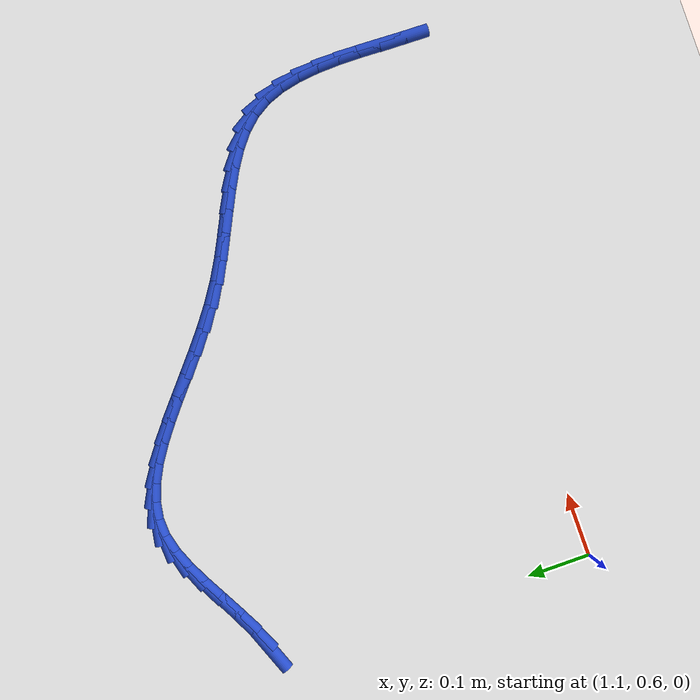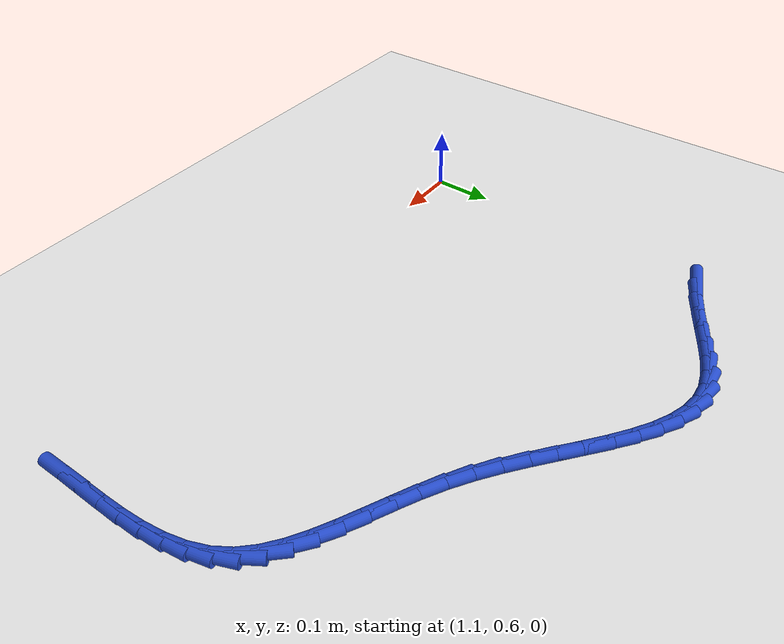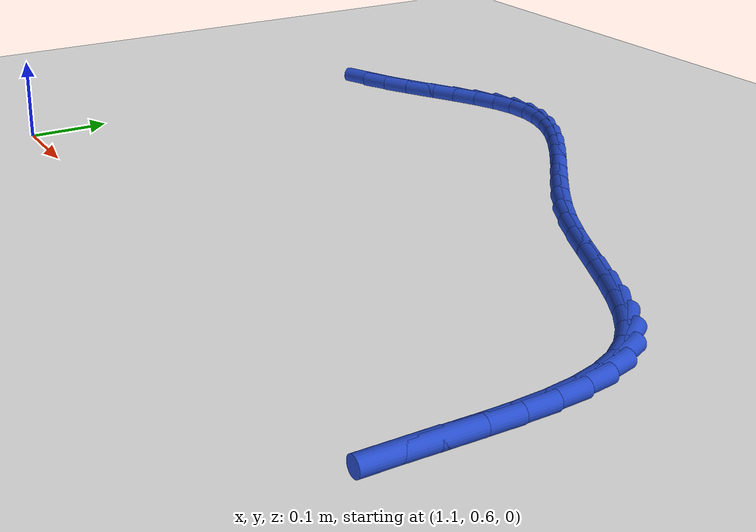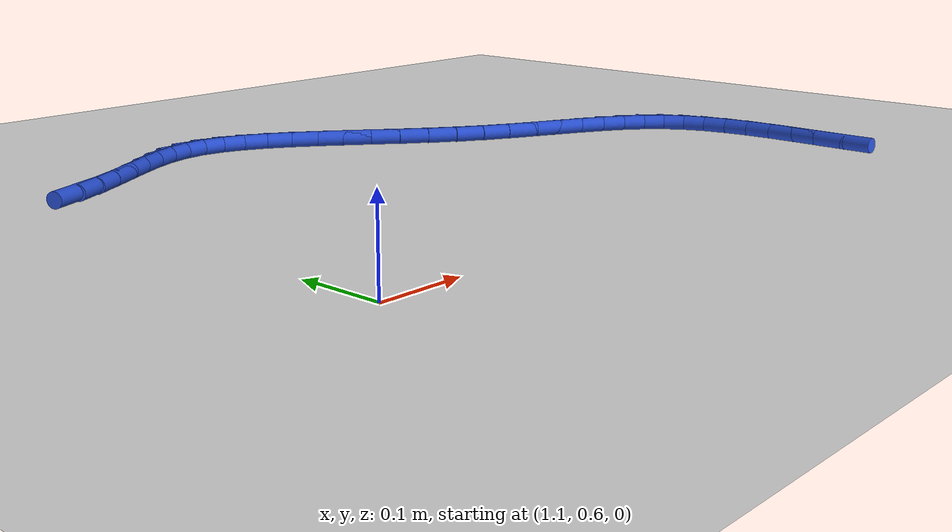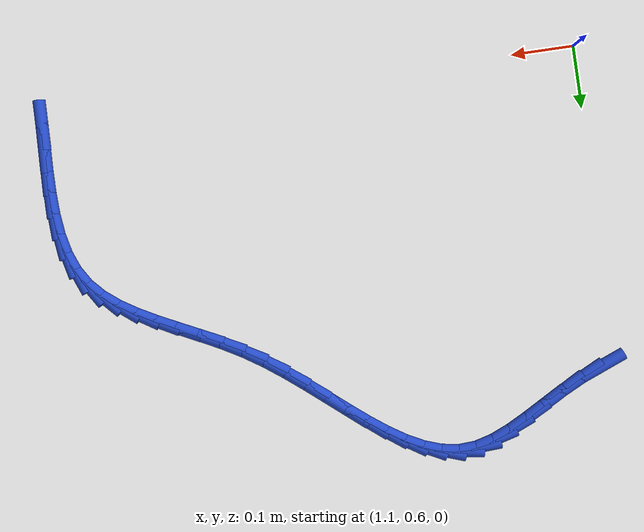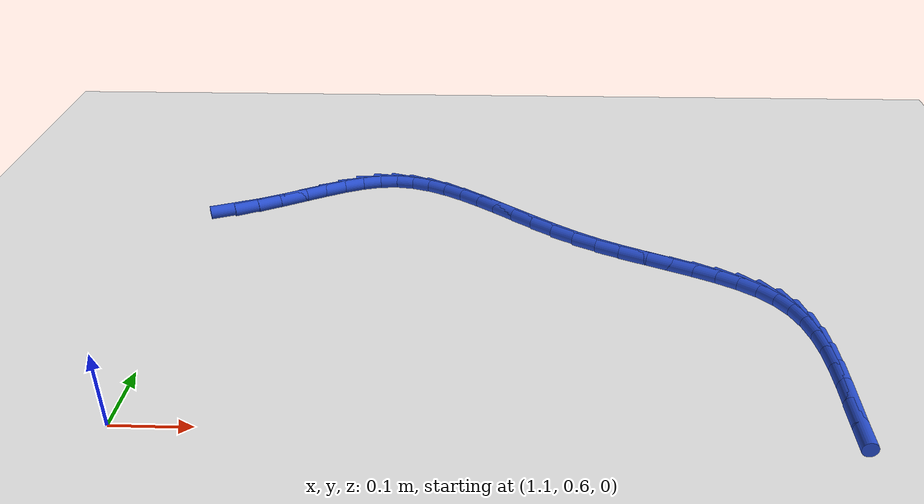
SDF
<sdf version="1.6">
 <world name="default">
  <model name="ground_plane">
   <static>1</static>
   <link name="link">
    <collision name="collision">
     <geometry><plane><normal>0 0 1</normal><size>100 100</size></plane></geometry>
     <surface><friction><ode><mu>100</mu><mu2>50</mu2></ode></friction></surface>
    </collision>
    <visual name="visual">
     <cast_shadows>0</cast_shadows>
     <geometry><plane><normal>0 0 1</normal><size>100 100</size></plane></geometry>
     <material>
      <script><uri>file://media/materials/scripts/gazebo.material</uri><name>Gazebo/WhiteGlow</name></script>
     </material>
    </visual>
   </link>
  </model>
  <model name="line">
   <link name="link_52">
    <pose>1.1265921747616061 1.1109407938012097 0.01 0 1.57 0.38331383297517735</pose>
    <collision name="collision">
     <geometry><cylinder><radius>0.01</radius><length>0.08</length></cylinder></geometry>
    </collision>
    <visual name="visual">
     <material>
      <script><name>Gazebo/Blue</name><uri>file://media/materials/scripts/gazebo.material</uri></script>
     </material>
     <geometry><cylinder><radius>0.01</radius><length>0.08</length></cylinder></geometry>
    </visual>
   </link>
   <link name="link_53">
    <pose>1.160146334136835 1.1244718548027928 0.01 0 1.57 0.46564897024068913</pose>
    <collision name="collision">
     <geometry><cylinder><radius>0.01</radius><length>0.08</length></cylinder></geometry>
    </collision>
    <visual name="visual">
     <material>
      <script><name>Gazebo/Blue</name><uri>file://media/materials/scripts/gazebo.material</uri></script>
     </material>
     <geometry><cylinder><radius>0.01</radius><length>0.08</length></cylinder></geometry>
    </visual>
   </link>
   <link name="link_54">
    <pose>1.1925611931820037 1.1407604579657564 0.01 0 1.57 0.5103595775224526</pose>
    <collision name="collision">
     <geometry><cylinder><radius>0.01</radius><length>0.08</length></cylinder></geometry>
    </collision>
    <visual name="visual">
     <material>
      <script><name>Gazebo/Blue</name><uri>file://media/materials/scripts/gazebo.material</uri></script>
     </material>
     <geometry><cylinder><radius>0.01</radius><length>0.08</length></cylinder></geometry>
    </visual>
   </link>
   <link name="link_55">
    <pose>1.2239514683503903 1.158333703762203 0.01 0 1.57 0.5176873888681286</pose>
    <collision name="collision">
     <geometry><cylinder><radius>0.01</radius><length>0.08</length></cylinder></geometry>
    </collision>
    <visual name="visual">
     <material>
      <script><name>Gazebo/Blue</name><uri>file://media/materials/scripts/gazebo.material</uri></script>
     </material>
     <geometry><cylinder><radius>0.01</radius><length>0.08</length></cylinder></geometry>
    </visual>
   </link>
   <link name="link_56">
    <pose>1.2544363690275746 1.1756947064746546 0.01 0 1.57 0.4850304421787086</pose>
    <collision name="collision">
     <geometry><cylinder><radius>0.01</radius><length>0.08</length></cylinder></geometry>
    </collision>
    <visual name="visual">
     <material>
      <script><name>Gazebo/Blue</name><uri>file://media/materials/scripts/gazebo.material</uri></script>
     </material>
     <geometry><cylinder><radius>0.01</radius><length>0.08</length></cylinder></geometry>
    </visual>
   </link>
   <link name="link_57">
    <pose>1.2841351045991336 1.1913465803856331 0.01 0 1.57 0.4049985213432395</pose>
    <collision name="collision">
     <geometry><cylinder><radius>0.01</radius><length>0.08</length></cylinder></geometry>
    </collision>
    <visual name="visual">
     <material>
      <script><name>Gazebo/Blue</name><uri>file://media/materials/scripts/gazebo.material</uri></script>
     </material>
     <geometry><cylinder><radius>0.01</radius><length>0.08</length></cylinder></geometry>
    </visual>
   </link>
   <link name="link_58">
    <pose>1.313166884450647 1.2037924397776605 0.01 0 1.57 0.26542142345214836</pose>
    <collision name="collision">
     <geometry><cylinder><radius>0.01</radius><length>0.08</length></cylinder></geometry>
    </collision>
    <visual name="visual">
     <material>
      <script><name>Gazebo/Blue</name><uri>file://media/materials/scripts/gazebo.material</uri></script>
     </material>
     <geometry><cylinder><radius>0.01</radius><length>0.08</length></cylinder></geometry>
    </visual>
   </link>
   <link name="link_59">
    <pose>1.3416509179676923 1.211535398933259 0.01 0 1.57 0.06031166822615153</pose>
    <collision name="collision">
     <geometry><cylinder><radius>0.01</radius><length>0.08</length></cylinder></geometry>
    </collision>
    <visual name="visual">
     <material>
      <script><name>Gazebo/Blue</name><uri>file://media/materials/scripts/gazebo.material</uri></script>
     </material>
     <geometry><cylinder><radius>0.01</radius><length>0.08</length></cylinder></geometry>
    </visual>
   </link>
   <link name="link_60">
    <pose>1.3697072584119905 1.2132295783190832 0.01 0 1.57 -0.15415004500149007</pose>
    <collision name="collision">
     <geometry><cylinder><radius>0.01</radius><length>0.08</length></cylinder></geometry>
    </collision>
    <visual name="visual">
     <material>
      <script><name>Gazebo/Blue</name><uri>file://media/materials/scripts/gazebo.material</uri></script>
     </material>
     <geometry><cylinder><radius>0.01</radius><length>0.08</length></cylinder></geometry>
    </visual>
   </link>
   <link name="link_61">
    <pose>1.3974637134783245 1.2089167041035107 0.01 0 1.57 -0.33264679324486424</pose>
    <collision name="collision">
     <geometry><cylinder><radius>0.01</radius><length>0.08</length></cylinder></geometry>
    </collision>
    <visual name="visual">
     <material>
      <script><name>Gazebo/Blue</name><uri>file://media/materials/scripts/gazebo.material</uri></script>
     </material>
     <geometry><cylinder><radius>0.01</radius><length>0.08</length></cylinder></geometry>
    </visual>
   </link>
   <link name="link_62">
    <pose>1.4250522641023826 1.1993852769551159 0.01 0 1.57 -0.46880084862231314</pose>
    <collision name="collision">
     <geometry><cylinder><radius>0.01</radius><length>0.08</length></cylinder></geometry>
    </collision>
    <visual name="visual">
     <material>
      <script><name>Gazebo/Blue</name><uri>file://media/materials/scripts/gazebo.material</uri></script>
     </material>
     <geometry><cylinder><radius>0.01</radius><length>0.08</length></cylinder></geometry>
    </visual>
   </link>
   <link name="link_63">
    <pose>1.4526049314771863 1.1854310013323681 0.01 0 1.57 -0.5663874130373415</pose>
    <collision name="collision">
     <geometry><cylinder><radius>0.01</radius><length>0.08</length></cylinder></geometry>
    </collision>
    <visual name="visual">
     <material>
      <script><name>Gazebo/Blue</name><uri>file://media/materials/scripts/gazebo.material</uri></script>
     </material>
     <geometry><cylinder><radius>0.01</radius><length>0.08</length></cylinder></geometry>
    </visual>
   </link>
   <link name="link_64">
    <pose>1.4802537367957573 1.1678495816937384 0.01 0 1.57 -0.6320428697388675</pose>
    <collision name="collision">
     <geometry><cylinder><radius>0.01</radius><length>0.08</length></cylinder></geometry>
    </collision>
    <visual name="visual">
     <material>
      <script><name>Gazebo/Blue</name><uri>file://media/materials/scripts/gazebo.material</uri></script>
     </material>
     <geometry><cylinder><radius>0.01</radius><length>0.08</length></cylinder></geometry>
    </visual>
   </link>
   <link name="link_65">
    <pose>1.5081307012511185 1.147436722497697 0.01 0 1.57 -0.6716861099350321</pose>
    <collision name="collision">
     <geometry><cylinder><radius>0.01</radius><length>0.08</length></cylinder></geometry>
    </collision>
    <visual name="visual">
     <material>
      <script><name>Gazebo/Blue</name><uri>file://media/materials/scripts/gazebo.material</uri></script>
     </material>
     <geometry><cylinder><radius>0.01</radius><length>0.08</length></cylinder></geometry>
    </visual>
   </link>
   <link name="link_66">
    <pose>1.536367846036292 1.1249881282027132 0.01 0 1.57 -0.6895289632966681</pose>
    <collision name="collision">
     <geometry><cylinder><radius>0.01</radius><length>0.08</length></cylinder></geometry>
    </collision>
    <visual name="visual">
     <material>
      <script><name>Gazebo/Blue</name><uri>file://media/materials/scripts/gazebo.material</uri></script>
     </material>
     <geometry><cylinder><radius>0.01</radius><length>0.08</length></cylinder></geometry>
    </visual>
   </link>
   <link name="link_67">
    <pose>1.565097192344299 1.101299503267259 0.01 0 1.57 -0.6881001317095136</pose>
    <collision name="collision">
     <geometry><cylinder><radius>0.01</radius><length>0.08</length></cylinder></geometry>
    </collision>
    <visual name="visual">
     <material>
      <script><name>Gazebo/Blue</name><uri>file://media/materials/scripts/gazebo.material</uri></script>
     </material>
     <geometry><cylinder><radius>0.01</radius><length>0.08</length></cylinder></geometry>
    </visual>
   </link>
   <link name="link_68">
    <pose>1.5944507613681616 1.0771665521498035 0.01 0 1.57 -0.6685076442760897</pose>
    <collision name="collision">
     <geometry><cylinder><radius>0.01</radius><length>0.08</length></cylinder></geometry>
    </collision>
    <visual name="visual">
     <material>
      <script><name>Gazebo/Blue</name><uri>file://media/materials/scripts/gazebo.material</uri></script>
     </material>
     <geometry><cylinder><radius>0.01</radius><length>0.08</length></cylinder></geometry>
    </visual>
   </link>
   <link name="link_69">
    <pose>1.6245605743009028 1.053384979308817 0.01 0 1.57 -0.6307017678419294</pose>
    <collision name="collision">
     <geometry><cylinder><radius>0.01</radius><length>0.08</length></cylinder></geometry>
    </collision>
    <visual name="visual">
     <material>
      <script><name>Gazebo/Blue</name><uri>file://media/materials/scripts/gazebo.material</uri></script>
     </material>
     <geometry><cylinder><radius>0.01</radius><length>0.08</length></cylinder></geometry>
    </visual>
   </link>
   <link name="link_70">
    <pose>1.6555586523355434 1.0307504892027703 0.01 0 1.57 -0.5738004789861915</pose>
    <collision name="collision">
     <geometry><cylinder><radius>0.01</radius><length>0.08</length></cylinder></geometry>
    </collision>
    <visual name="visual">
     <material>
      <script><name>Gazebo/Blue</name><uri>file://media/materials/scripts/gazebo.material</uri></script>
     </material>
     <geometry><cylinder><radius>0.01</radius><length>0.08</length></cylinder></geometry>
    </visual>
   </link>
   <link name="link_71">
    <pose>1.6875757306218397 1.0100564574388695 0.01 0 1.57 -0.5095256205535255</pose>
    <collision name="collision">
     <geometry><cylinder><radius>0.01</radius><length>0.08</length></cylinder></geometry>
    </collision>
    <visual name="visual">
     <material>
      <script><name>Gazebo/Blue</name><uri>file://media/materials/scripts/gazebo.material</uri></script>
     </material>
     <geometry><cylinder><radius>0.01</radius><length>0.08</length></cylinder></geometry>
    </visual>
   </link>
   <link name="link_72">
    <pose>1.7205014499572242 0.9916596702016063 0.01 0 1.57 -0.46580849454297196</pose>
    <collision name="collision">
     <geometry><cylinder><radius>0.01</radius><length>0.08</length></cylinder></geometry>
    </collision>
    <visual name="visual">
     <material>
      <script><name>Gazebo/Blue</name><uri>file://media/materials/scripts/gazebo.material</uri></script>
     </material>
     <geometry><cylinder><radius>0.01</radius><length>0.08</length></cylinder></geometry>
    </visual>
   </link>
   <link name="link_73">
    <pose>1.7537022618001488 0.974969488199618 0.01 0 1.57 -0.44670020157682716</pose>
    <collision name="collision">
     <geometry><cylinder><radius>0.01</radius><length>0.08</length></cylinder></geometry>
    </collision>
    <visual name="visual">
     <material>
      <script><name>Gazebo/Blue</name><uri>file://media/materials/scripts/gazebo.material</uri></script>
     </material>
     <geometry><cylinder><radius>0.01</radius><length>0.08</length></cylinder></geometry>
    </visual>
   </link>
   <link name="link_74">
    <pose>1.7864760537995934 0.9592711123107235 0.01 0 1.57 -0.4534597389740223</pose>
    <collision name="collision">
     <geometry><cylinder><radius>0.01</radius><length>0.08</length></cylinder></geometry>
    </collision>
    <visual name="visual">
     <material>
      <script><name>Gazebo/Blue</name><uri>file://media/materials/scripts/gazebo.material</uri></script>
     </material>
     <geometry><cylinder><radius>0.01</radius><length>0.08</length></cylinder></geometry>
    </visual>
   </link>
   <link name="link_75">
    <pose>1.8181207136045388 0.9438497434127398 0.01 0 1.57 -0.48887749013990073</pose>
    <collision name="collision">
     <geometry><cylinder><radius>0.01</radius><length>0.08</length></cylinder></geometry>
    </collision>
    <visual name="visual">
     <material>
      <script><name>Gazebo/Blue</name><uri>file://media/materials/scripts/gazebo.material</uri></script>
     </material>
     <geometry><cylinder><radius>0.01</radius><length>0.08</length></cylinder></geometry>
    </visual>
   </link>
   <link name="link_76">
    <pose>1.8479341288639648 0.9279905823834836 0.01 0 1.57 -0.5575895091189957</pose>
    <collision name="collision">
     <geometry><cylinder><radius>0.01</radius><length>0.08</length></cylinder></geometry>
    </collision>
    <visual name="visual">
     <material>
      <script><name>Gazebo/Blue</name><uri>file://media/materials/scripts/gazebo.material</uri></script>
     </material>
     <geometry><cylinder><radius>0.01</radius><length>0.08</length></cylinder></geometry>
    </visual>
   </link>
   <link name="link_77">
    <pose>1.8752141872268528 0.9109788301007741 0.01 0 1.57 -0.6656339722998078</pose>
    <collision name="collision">
     <geometry><cylinder><radius>0.01</radius><length>0.08</length></cylinder></geometry>
    </collision>
    <visual name="visual">
     <material>
      <script><name>Gazebo/Blue</name><uri>file://media/materials/scripts/gazebo.material</uri></script>
     </material>
     <geometry><cylinder><radius>0.01</radius><length>0.08</length></cylinder></geometry>
    </visual>
   </link>
   <link name="link_78">
    <pose>1.8992587763421822 0.8920996874424277 0.01 0 1.57 -0.8179673193852823</pose>
    <collision name="collision">
     <geometry><cylinder><radius>0.01</radius><length>0.08</length></cylinder></geometry>
    </collision>
    <visual name="visual">
     <material>
      <script><name>Gazebo/Blue</name><uri>file://media/materials/scripts/gazebo.material</uri></script>
     </material>
     <geometry><cylinder><radius>0.01</radius><length>0.08</length></cylinder></geometry>
    </visual>
   </link>
   <link name="link_79">
    <pose>1.9193657838589333 0.8706383552862618 0.01 0 1.57 -1.010755072521734</pose>
    <collision name="collision">
     <geometry><cylinder><radius>0.01</radius><length>0.08</length></cylinder></geometry>
    </collision>
    <visual name="visual">
     <material>
      <script><name>Gazebo/Blue</name><uri>file://media/materials/scripts/gazebo.material</uri></script>
     </material>
     <geometry><cylinder><radius>0.01</radius><length>0.08</length></cylinder></geometry>
    </visual>
   </link>
   <link name="link_80">
    <pose>1.934869404800886 0.8459119634239772 0.01 0 1.57 -1.1985110948023179</pose>
    <collision name="collision">
     <geometry><cylinder><radius>0.01</radius><length>0.08</length></cylinder></geometry>
    </collision>
    <visual name="visual">
     <material>
      <script><name>Gazebo/Blue</name><uri>file://media/materials/scripts/gazebo.material</uri></script>
     </material>
     <geometry><cylinder><radius>0.01</radius><length>0.08</length></cylinder></geometry>
    </visual>
   </link>
   <link name="link_81">
    <pose>1.9458204738927953 0.8178678587154096 0.01 0 1.57 -1.3443204766195784</pose>
    <collision name="collision">
     <geometry><cylinder><radius>0.01</radius><length>0.08</length></cylinder></geometry>
    </collision>
    <visual name="visual">
     <material>
      <script><name>Gazebo/Blue</name><uri>file://media/materials/scripts/gazebo.material</uri></script>
     </material>
     <geometry><cylinder><radius>0.01</radius><length>0.08</length></cylinder></geometry>
    </visual>
   </link>
   <link name="link_82">
    <pose>1.9529262604362014 0.7870306603566029 0.01 0 1.57 -1.4507152748987588</pose>
    <collision name="collision">
     <geometry><cylinder><radius>0.01</radius><length>0.08</length></cylinder></geometry>
    </collision>
    <visual name="visual">
     <material>
      <script><name>Gazebo/Blue</name><uri>file://media/materials/scripts/gazebo.material</uri></script>
     </material>
     <geometry><cylinder><radius>0.01</radius><length>0.08</length></cylinder></geometry>
    </visual>
   </link>
   <link name="link_83">
    <pose>1.9569182710102144 0.7539463019446735 0.01 0 1.57 -1.5245532180694041</pose>
    <collision name="collision">
     <geometry><cylinder><radius>0.01</radius><length>0.08</length></cylinder></geometry>
    </collision>
    <visual name="visual">
     <material>
      <script><name>Gazebo/Blue</name><uri>file://media/materials/scripts/gazebo.material</uri></script>
     </material>
     <geometry><cylinder><radius>0.01</radius><length>0.08</length></cylinder></geometry>
    </visual>
   </link>
   <link name="link_84">
    <pose>1.9585280121939426 0.7191607170767358 0.01 0 1.57 1.5696549631936816</pose>
    <collision name="collision">
     <geometry><cylinder><radius>0.01</radius><length>0.08</length></cylinder></geometry>
    </collision>
    <visual name="visual">
     <material>
      <script><name>Gazebo/Blue</name><uri>file://media/materials/scripts/gazebo.material</uri></script>
     </material>
     <geometry><cylinder><radius>0.01</radius><length>0.08</length></cylinder></geometry>
    </visual>
   </link>
   <link name="link_85">
    <pose>1.9584869905664963 0.683219839349905 0.01 0 1.57 1.5445295476282128</pose>
    <collision name="collision">
     <geometry><cylinder><radius>0.01</radius><length>0.08</length></cylinder></geometry>
    </collision>
    <visual name="visual">
     <material>
      <script><name>Gazebo/Blue</name><uri>file://media/materials/scripts/gazebo.material</uri></script>
     </material>
     <geometry><cylinder><radius>0.01</radius><length>0.08</length></cylinder></geometry>
    </visual>
   </link>
   <link name="link_86">
    <pose>1.9575267127069853 0.6466696023612976 0.01 0 1.57 1.5394514291620447</pose>
    <collision name="collision">
     <geometry><cylinder><radius>0.01</radius><length>0.08</length></cylinder></geometry>
    </collision>
    <visual name="visual">
     <material>
      <script><name>Gazebo/Blue</name><uri>file://media/materials/scripts/gazebo.material</uri></script>
     </material>
     <geometry><cylinder><radius>0.01</radius><length>0.08</length></cylinder></geometry>
    </visual>
   </link>
   <link name="link_87">
    <pose>1.9563786851945175 0.6100559397080275 0.01 0 1.57 1.553838699194039</pose>
    <collision name="collision">
     <geometry><cylinder><radius>0.01</radius><length>0.08</length></cylinder></geometry>
    </collision>
    <visual name="visual">
     <material>
      <script><name>Gazebo/Blue</name><uri>file://media/materials/scripts/gazebo.material</uri></script>
     </material>
     <geometry><cylinder><radius>0.01</radius><length>0.08</length></cylinder></geometry>
    </visual>
   </link>
  </model>
 </world>
</sdf>
